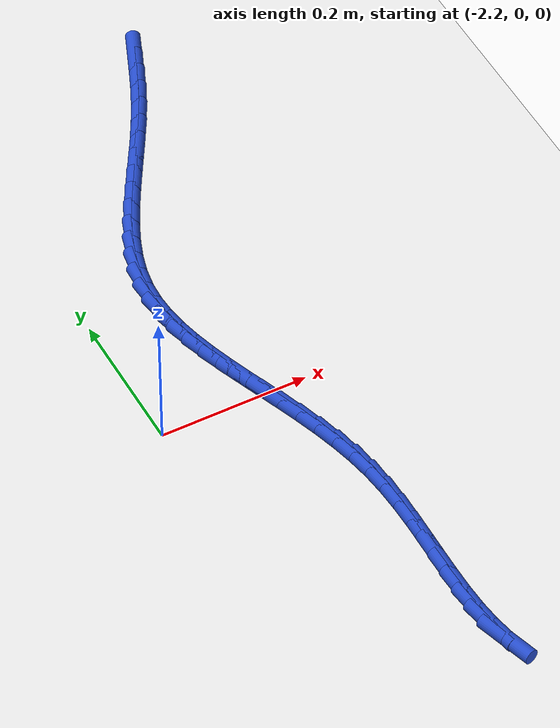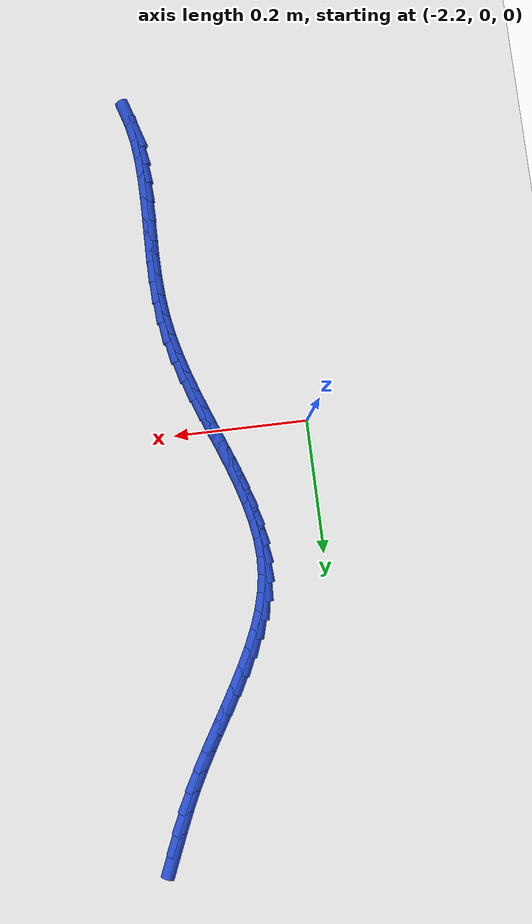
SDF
<sdf version="1.6">
 <world name="default">
  <model name="ground_plane">
   <static>1</static>
   <link name="link">
    <collision name="collision">
     <geometry><plane><normal>0 0 1</normal><size>100 100</size></plane></geometry>
     <surface><friction><ode><mu>100</mu><mu2>50</mu2></ode></friction></surface>
    </collision>
    <visual name="visual">
     <cast_shadows>0</cast_shadows>
     <geometry><plane><normal>0 0 1</normal><size>100 100</size></plane></geometry>
     <material>
      <script><uri>file://media/materials/scripts/gazebo.material</uri><name>Gazebo/WhiteGlow</name></script>
     </material>
    </visual>
   </link>
  </model>
  <model name="line">
   <link name="link_95">
    <pose>-1.933398633218896 0.5966628595469724 0.01 0 1.57 1.1751805735671097</pose>
    <collision name="collision">
     <geometry><cylinder><radius>0.01</radius><length>0.08</length></cylinder></geometry>
    </collision>
    <visual name="visual">
     <material>
      <script><name>Gazebo/Blue</name><uri>file://media/materials/scripts/gazebo.material</uri></script>
     </material>
     <geometry><cylinder><radius>0.01</radius><length>0.08</length></cylinder></geometry>
    </visual>
   </link>
   <link name="link_96">
    <pose>-1.945106461805741 0.568629207595651 0.01 0 1.57 1.1579047600400008</pose>
    <collision name="collision">
     <geometry><cylinder><radius>0.01</radius><length>0.08</length></cylinder></geometry>
    </collision>
    <visual name="visual">
     <material>
      <script><name>Gazebo/Blue</name><uri>file://media/materials/scripts/gazebo.material</uri></script>
     </material>
     <geometry><cylinder><radius>0.01</radius><length>0.08</length></cylinder></geometry>
    </visual>
   </link>
   <link name="link_97">
    <pose>-1.9573983678891713 0.5405701931193482 0.01 0 1.57 1.1274339485141056</pose>
    <collision name="collision">
     <geometry><cylinder><radius>0.01</radius><length>0.08</length></cylinder></geometry>
    </collision>
    <visual name="visual">
     <material>
      <script><name>Gazebo/Blue</name><uri>file://media/materials/scripts/gazebo.material</uri></script>
     </material>
     <geometry><cylinder><radius>0.01</radius><length>0.08</length></cylinder></geometry>
    </visual>
   </link>
   <link name="link_98">
    <pose>-1.9706364625901456 0.512694337602326 0.01 0 1.57 1.088330521089331</pose>
    <collision name="collision">
     <geometry><cylinder><radius>0.01</radius><length>0.08</length></cylinder></geometry>
    </collision>
    <visual name="visual">
     <material>
      <script><name>Gazebo/Blue</name><uri>file://media/materials/scripts/gazebo.material</uri></script>
     </material>
     <geometry><cylinder><radius>0.01</radius><length>0.08</length></cylinder></geometry>
    </visual>
   </link>
   <link name="link_99">
    <pose>-1.985053765479608 0.48516721540649993 0.01 0 1.57 1.057985193894595</pose>
    <collision name="collision">
     <geometry><cylinder><radius>0.01</radius><length>0.08</length></cylinder></geometry>
    </collision>
    <visual name="visual">
     <material>
      <script><name>Gazebo/Blue</name><uri>file://media/materials/scripts/gazebo.material</uri></script>
     </material>
     <geometry><cylinder><radius>0.01</radius><length>0.08</length></cylinder></geometry>
    </visual>
   </link>
   <link name="link_100">
    <pose>-2.0003612602654806 0.4579807261793962 0.01 0 1.57 1.0403309535451792</pose>
    <collision name="collision">
     <geometry><cylinder><radius>0.01</radius><length>0.08</length></cylinder></geometry>
    </collision>
    <visual name="visual">
     <material>
      <script><name>Gazebo/Blue</name><uri>file://media/materials/scripts/gazebo.material</uri></script>
     </material>
     <geometry><cylinder><radius>0.01</radius><length>0.08</length></cylinder></geometry>
    </visual>
   </link>
   <link name="link_101">
    <pose>-2.0161379887457707 0.4310828741675857 0.01 0 1.57 1.0351262474314085</pose>
    <collision name="collision">
     <geometry><cylinder><radius>0.01</radius><length>0.08</length></cylinder></geometry>
    </collision>
    <visual name="visual">
     <material>
      <script><name>Gazebo/Blue</name><uri>file://media/materials/scripts/gazebo.material</uri></script>
     </material>
     <geometry><cylinder><radius>0.01</radius><length>0.08</length></cylinder></geometry>
    </visual>
   </link>
   <link name="link_102">
    <pose>-2.031962992712192 0.4044216636155459 0.01 0 1.57 1.0425060900937468</pose>
    <collision name="collision">
     <geometry><cylinder><radius>0.01</radius><length>0.08</length></cylinder></geometry>
    </collision>
    <visual name="visual">
     <material>
      <script><name>Gazebo/Blue</name><uri>file://media/materials/scripts/gazebo.material</uri></script>
     </material>
     <geometry><cylinder><radius>0.01</radius><length>0.08</length></cylinder></geometry>
    </visual>
   </link>
   <link name="link_103">
    <pose>-2.0474153139564577 0.37794509876775284 0.01 0 1.57 1.0630259282874965</pose>
    <collision name="collision">
     <geometry><cylinder><radius>0.01</radius><length>0.08</length></cylinder></geometry>
    </collision>
    <visual name="visual">
     <material>
      <script><name>Gazebo/Blue</name><uri>file://media/materials/scripts/gazebo.material</uri></script>
     </material>
     <geometry><cylinder><radius>0.01</radius><length>0.08</length></cylinder></geometry>
    </visual>
   </link>
   <link name="link_104">
    <pose>-2.0620739942702806 0.3516011838686847 0.01 0 1.57 1.097676575193105</pose>
    <collision name="collision">
     <geometry><cylinder><radius>0.01</radius><length>0.08</length></cylinder></geometry>
    </collision>
    <visual name="visual">
     <material>
      <script><name>Gazebo/Blue</name><uri>file://media/materials/scripts/gazebo.material</uri></script>
     </material>
     <geometry><cylinder><radius>0.01</radius><length>0.08</length></cylinder></geometry>
    </visual>
   </link>
   <link name="link_105">
    <pose>-2.075518075445375 0.3253379231628176 0.01 0 1.57 1.1478488046688378</pose>
    <collision name="collision">
     <geometry><cylinder><radius>0.01</radius><length>0.08</length></cylinder></geometry>
    </collision>
    <visual name="visual">
     <material>
      <script><name>Gazebo/Blue</name><uri>file://media/materials/scripts/gazebo.material</uri></script>
     </material>
     <geometry><cylinder><radius>0.01</radius><length>0.08</length></cylinder></geometry>
    </visual>
   </link>
   <link name="link_106">
    <pose>-2.0873265992734535 0.29910332089462915 0.01 0 1.57 1.215191925517224</pose>
    <collision name="collision">
     <geometry><cylinder><radius>0.01</radius><length>0.08</length></cylinder></geometry>
    </collision>
    <visual name="visual">
     <material>
      <script><name>Gazebo/Blue</name><uri>file://media/materials/scripts/gazebo.material</uri></script>
     </material>
     <geometry><cylinder><radius>0.01</radius><length>0.08</length></cylinder></geometry>
    </visual>
   </link>
   <link name="link_107">
    <pose>-2.0970786075462295 0.27284538130859615 0.01 0 1.57 1.3012695038880582</pose>
    <collision name="collision">
     <geometry><cylinder><radius>0.01</radius><length>0.08</length></cylinder></geometry>
    </collision>
    <visual name="visual">
     <material>
      <script><name>Gazebo/Blue</name><uri>file://media/materials/scripts/gazebo.material</uri></script>
     </material>
     <geometry><cylinder><radius>0.01</radius><length>0.08</length></cylinder></geometry>
    </visual>
   </link>
   <link name="link_108">
    <pose>-2.104353142055417 0.24651210864919532 0.01 0 1.57 1.4068980138908467</pose>
    <collision name="collision">
     <geometry><cylinder><radius>0.01</radius><length>0.08</length></cylinder></geometry>
    </collision>
    <visual name="visual">
     <material>
      <script><name>Gazebo/Blue</name><uri>file://media/materials/scripts/gazebo.material</uri></script>
     </material>
     <geometry><cylinder><radius>0.01</radius><length>0.08</length></cylinder></geometry>
    </visual>
   </link>
   <link name="link_109">
    <pose>-2.1087292449326362 0.22005150717376276 0.01 0 1.57 1.5258230825620478</pose>
    <collision name="collision">
     <geometry><cylinder><radius>0.01</radius><length>0.08</length></cylinder></geometry>
    </collision>
    <visual name="visual">
     <material>
      <script><name>Gazebo/Blue</name><uri>file://media/materials/scripts/gazebo.material</uri></script>
     </material>
     <geometry><cylinder><radius>0.01</radius><length>0.08</length></cylinder></geometry>
    </visual>
   </link>
   <link name="link_110">
    <pose>-2.109927895587729 0.19341695057942532 0.01 0 1.57 -1.5070582183943362</pose>
    <collision name="collision">
     <geometry><cylinder><radius>0.01</radius><length>0.08</length></cylinder></geometry>
    </collision>
    <visual name="visual">
     <material>
      <script><name>Gazebo/Blue</name><uri>file://media/materials/scripts/gazebo.material</uri></script>
     </material>
     <geometry><cylinder><radius>0.01</radius><length>0.08</length></cylinder></geometry>
    </visual>
   </link>
   <link name="link_111">
    <pose>-2.1082151943427085 0.166582434305209 0.01 0 1.57 -1.4158111573089613</pose>
    <collision name="collision">
     <geometry><cylinder><radius>0.01</radius><length>0.08</length></cylinder></geometry>
    </collision>
    <visual name="visual">
     <material>
      <script><name>Gazebo/Blue</name><uri>file://media/materials/scripts/gazebo.material</uri></script>
     </material>
     <geometry><cylinder><radius>0.01</radius><length>0.08</length></cylinder></geometry>
    </visual>
   </link>
   <link name="link_112">
    <pose>-2.103988088425152 0.1395269036848396 0.01 0 1.57 -1.3424288228580845</pose>
    <collision name="collision">
     <geometry><cylinder><radius>0.01</radius><length>0.08</length></cylinder></geometry>
    </collision>
    <visual name="visual">
     <material>
      <script><name>Gazebo/Blue</name><uri>file://media/materials/scripts/gazebo.material</uri></script>
     </material>
     <geometry><cylinder><radius>0.01</radius><length>0.08</length></cylinder></geometry>
    </visual>
   </link>
   <link name="link_113">
    <pose>-2.0976435250626366 0.11222930405204437 0.01 0 1.57 -1.2861153375866534</pose>
    <collision name="collision">
     <geometry><cylinder><radius>0.01</radius><length>0.08</length></cylinder></geometry>
    </collision>
    <visual name="visual">
     <material>
      <script><name>Gazebo/Blue</name><uri>file://media/materials/scripts/gazebo.material</uri></script>
     </material>
     <geometry><cylinder><radius>0.01</radius><length>0.08</length></cylinder></geometry>
    </visual>
   </link>
   <link name="link_114">
    <pose>-2.0895784514827405 0.0846685807405491 0.01 0 1.57 -1.2455912391199608</pose>
    <collision name="collision">
     <geometry><cylinder><radius>0.01</radius><length>0.08</length></cylinder></geometry>
    </collision>
    <visual name="visual">
     <material>
      <script><name>Gazebo/Blue</name><uri>file://media/materials/scripts/gazebo.material</uri></script>
     </material>
     <geometry><cylinder><radius>0.01</radius><length>0.08</length></cylinder></geometry>
    </visual>
   </link>
   <link name="link_115">
    <pose>-2.0801898149130422 0.05682367908408111 0.01 0 1.57 -1.219553951465112</pose>
    <collision name="collision">
     <geometry><cylinder><radius>0.01</radius><length>0.08</length></cylinder></geometry>
    </collision>
    <visual name="visual">
     <material>
      <script><name>Gazebo/Blue</name><uri>file://media/materials/scripts/gazebo.material</uri></script>
     </material>
     <geometry><cylinder><radius>0.01</radius><length>0.08</length></cylinder></geometry>
    </visual>
   </link>
   <link name="link_116">
    <pose>-2.0698745625811164 0.028673544416366454 0.01 0 1.57 -1.206916733774169</pose>
    <collision name="collision">
     <geometry><cylinder><radius>0.01</radius><length>0.08</length></cylinder></geometry>
    </collision>
    <visual name="visual">
     <material>
      <script><name>Gazebo/Blue</name><uri>file://media/materials/scripts/gazebo.material</uri></script>
     </material>
     <geometry><cylinder><radius>0.01</radius><length>0.08</length></cylinder></geometry>
    </visual>
   </link>
   <link name="link_117">
    <pose>-2.0590296417145417 0.00019712207113103605 0.01 0 1.57 -1.2069034042312874</pose>
    <collision name="collision">
     <geometry><cylinder><radius>0.01</radius><length>0.08</length></cylinder></geometry>
    </collision>
    <visual name="visual">
     <material>
      <script><name>Gazebo/Blue</name><uri>file://media/materials/scripts/gazebo.material</uri></script>
     </material>
     <geometry><cylinder><radius>0.01</radius><length>0.08</length></cylinder></geometry>
    </visual>
   </link>
   <link name="link_118">
    <pose>-2.0480519995408963 -0.02862664261789726 0.01 0 1.57 -1.2190609678916402</pose>
    <collision name="collision">
     <geometry><cylinder><radius>0.01</radius><length>0.08</length></cylinder></geometry>
    </collision>
    <visual name="visual">
     <material>
      <script><name>Gazebo/Blue</name><uri>file://media/materials/scripts/gazebo.material</uri></script>
     </material>
     <geometry><cylinder><radius>0.01</radius><length>0.08</length></cylinder></geometry>
    </visual>
   </link>
   <link name="link_119">
    <pose>-2.0373385832877573 -0.05781880431699256 0.01 0 1.57 -1.24322465476103</pose>
    <collision name="collision">
     <geometry><cylinder><radius>0.01</radius><length>0.08</length></cylinder></geometry>
    </collision>
    <visual name="visual">
     <material>
      <script><name>Gazebo/Blue</name><uri>file://media/materials/scripts/gazebo.material</uri></script>
     </material>
     <geometry><cylinder><radius>0.01</radius><length>0.08</length></cylinder></geometry>
    </visual>
   </link>
   <link name="link_120">
    <pose>-2.0272863401827013 -0.08740041769242832 0.01 0 1.57 -1.2794470008912202</pose>
    <collision name="collision">
     <geometry><cylinder><radius>0.01</radius><length>0.08</length></cylinder></geometry>
    </collision>
    <visual name="visual">
     <material>
      <script><name>Gazebo/Blue</name><uri>file://media/materials/scripts/gazebo.material</uri></script>
     </material>
     <geometry><cylinder><radius>0.01</radius><length>0.08</length></cylinder></geometry>
    </visual>
   </link>
   <link name="link_121">
    <pose>-2.0182922174533067 -0.11739253741047806 0.01 0 1.57 -1.3278872452010007</pose>
    <collision name="collision">
     <geometry><cylinder><radius>0.01</radius><length>0.08</length></cylinder></geometry>
    </collision>
    <visual name="visual">
     <material>
      <script><name>Gazebo/Blue</name><uri>file://media/materials/scripts/gazebo.material</uri></script>
     </material>
     <geometry><cylinder><radius>0.01</radius><length>0.08</length></cylinder></geometry>
    </visual>
   </link>
   <link name="link_122">
    <pose>-2.0107531623271506 -0.14781621813741602 0.01 0 1.57 -1.3886498701360706</pose>
    <collision name="collision">
     <geometry><cylinder><radius>0.01</radius><length>0.08</length></cylinder></geometry>
    </collision>
    <visual name="visual">
     <material>
      <script><name>Gazebo/Blue</name><uri>file://media/materials/scripts/gazebo.material</uri></script>
     </material>
     <geometry><cylinder><radius>0.01</radius><length>0.08</length></cylinder></geometry>
    </visual>
   </link>
   <link name="link_123">
    <pose>-2.0050661212107923 -0.17869251434741917 0.01 0 1.57 -1.4565606912906746</pose>
    <collision name="collision">
     <geometry><cylinder><radius>0.01</radius><length>0.08</length></cylinder></geometry>
    </collision>
    <visual name="visual">
     <material>
      <script><name>Gazebo/Blue</name><uri>file://media/materials/scripts/gazebo.material</uri></script>
     </material>
     <geometry><cylinder><radius>0.01</radius><length>0.08</length></cylinder></geometry>
    </visual>
   </link>
   <link name="link_124">
    <pose>-2.0014733309765607 -0.21000628286208403 0.01 0 1.57 -1.5125355458257805</pose>
    <collision name="collision">
     <geometry><cylinder><radius>0.01</radius><length>0.08</length></cylinder></geometry>
    </collision>
    <visual name="visual">
     <material>
      <script><name>Gazebo/Blue</name><uri>file://media/materials/scripts/gazebo.material</uri></script>
     </material>
     <geometry><cylinder><radius>0.01</radius><length>0.08</length></cylinder></geometry>
    </visual>
   </link>
   <link name="link_125">
    <pose>-1.9996302736379956 -0.2416050964717721 0.01 0 1.57 -1.5525982653790733</pose>
    <collision name="collision">
     <geometry><cylinder><radius>0.01</radius><length>0.08</length></cylinder></geometry>
    </collision>
    <visual name="visual">
     <material>
      <script><name>Gazebo/Blue</name><uri>file://media/materials/scripts/gazebo.material</uri></script>
     </material>
     <geometry><cylinder><radius>0.01</radius><length>0.08</length></cylinder></geometry>
    </visual>
   </link>
   <link name="link_126">
    <pose>-1.9990533515886788 -0.2733039872718615 0.01 0 1.57 1.5642924761665922</pose>
    <collision name="collision">
     <geometry><cylinder><radius>0.01</radius><length>0.08</length></cylinder></geometry>
    </collision>
    <visual name="visual">
     <material>
      <script><name>Gazebo/Blue</name><uri>file://media/materials/scripts/gazebo.material</uri></script>
     </material>
     <geometry><cylinder><radius>0.01</radius><length>0.08</length></cylinder></geometry>
    </visual>
   </link>
   <link name="link_127">
    <pose>-1.999258967222194 -0.3049179873577278 0.01 0 1.57 1.5547004277696308</pose>
    <collision name="collision">
     <geometry><cylinder><radius>0.01</radius><length>0.08</length></cylinder></geometry>
    </collision>
    <visual name="visual">
     <material>
      <script><name>Gazebo/Blue</name><uri>file://media/materials/scripts/gazebo.material</uri></script>
     </material>
     <geometry><cylinder><radius>0.01</radius><length>0.08</length></cylinder></geometry>
    </visual>
   </link>
   <link name="link_128">
    <pose>-1.9997635229321225 -0.33626212882474904 0.01 0 1.57 1.5604404239647676</pose>
    <collision name="collision">
     <geometry><cylinder><radius>0.01</radius><length>0.08</length></cylinder></geometry>
    </collision>
    <visual name="visual">
     <material>
      <script><name>Gazebo/Blue</name><uri>file://media/materials/scripts/gazebo.material</uri></script>
     </material>
     <geometry><cylinder><radius>0.01</radius><length>0.08</length></cylinder></geometry>
    </visual>
   </link>
   <link name="link_129">
    <pose>-2.000083421112046 -0.36715144376830233 0.01 0 1.57 -1.5592807208618646</pose>
    <collision name="collision">
     <geometry><cylinder><radius>0.01</radius><length>0.08</length></cylinder></geometry>
    </collision>
    <visual name="visual">
     <material>
      <script><name>Gazebo/Blue</name><uri>file://media/materials/scripts/gazebo.material</uri></script>
     </material>
     <geometry><cylinder><radius>0.01</radius><length>0.08</length></cylinder></geometry>
    </visual>
   </link>
   <link name="link_130">
    <pose>-1.9997350641555474 -0.39740096428376503 0.01 0 1.57 -1.519855829104219</pose>
    <collision name="collision">
     <geometry><cylinder><radius>0.01</radius><length>0.08</length></cylinder></geometry>
    </collision>
    <visual name="visual">
     <material>
      <script><name>Gazebo/Blue</name><uri>file://media/materials/scripts/gazebo.material</uri></script>
     </material>
     <geometry><cylinder><radius>0.01</radius><length>0.08</length></cylinder></geometry>
    </visual>
   </link>
   <link name="link_131">
    <pose>-1.9982348544562094 -0.426825722466515 0.01 0 1.57 -1.4608888517802412</pose>
    <collision name="collision">
     <geometry><cylinder><radius>0.01</radius><length>0.08</length></cylinder></geometry>
    </collision>
    <visual name="visual">
     <material>
      <script><name>Gazebo/Blue</name><uri>file://media/materials/scripts/gazebo.material</uri></script>
     </material>
     <geometry><cylinder><radius>0.01</radius><length>0.08</length></cylinder></geometry>
    </visual>
   </link>
   <link name="link_132">
    <pose>-1.995099194407613 -0.4552407504119279 0.01 0 1.57 -1.380098559985279</pose>
    <collision name="collision">
     <geometry><cylinder><radius>0.01</radius><length>0.08</length></cylinder></geometry>
    </collision>
    <visual name="visual">
     <material>
      <script><name>Gazebo/Blue</name><uri>file://media/materials/scripts/gazebo.material</uri></script>
     </material>
     <geometry><cylinder><radius>0.01</radius><length>0.08</length></cylinder></geometry>
    </visual>
   </link>
   <link name="link_133">
    <pose>-1.9898444864033418 -0.48246108021538203 0.01 0 1.57 -1.2756103870835425</pose>
    <collision name="collision">
     <geometry><cylinder><radius>0.01</radius><length>0.08</length></cylinder></geometry>
    </collision>
    <visual name="visual">
     <material>
      <script><name>Gazebo/Blue</name><uri>file://media/materials/scripts/gazebo.material</uri></script>
     </material>
     <geometry><cylinder><radius>0.01</radius><length>0.08</length></cylinder></geometry>
    </visual>
   </link>
  </model>
 </world>
</sdf>
